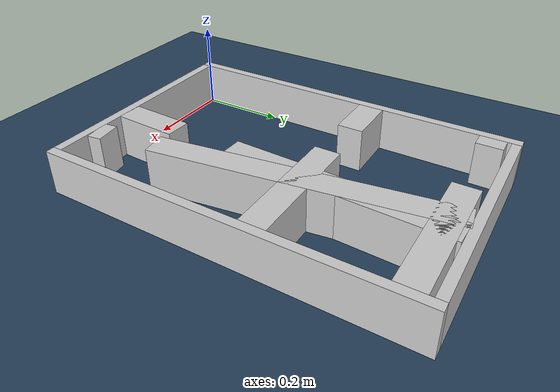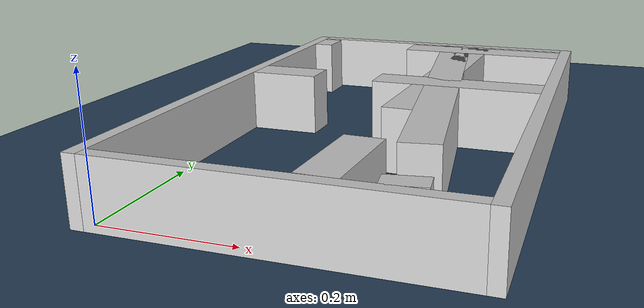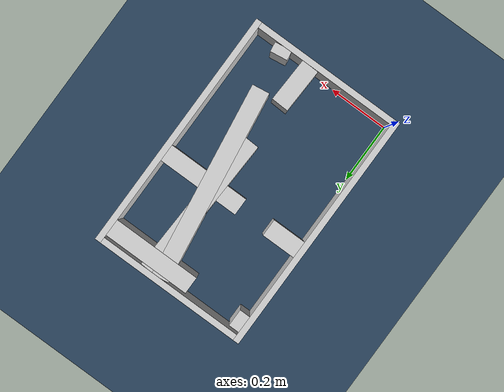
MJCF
<?xml version="1.0" ?>
<mujoco model="generated_real_template">
  <compiler angle="degree"/>
  <option timestep="0.002" integrator="implicitfast" iterations="100" cone="elliptic"/>
  <default>
    <geom density="1"/>
  </default>
  <asset>
    <texture builtin="gradient" height="3072" rgb1="0.3 0.5 0.7" rgb2="0 0 0" type="skybox" width="512"/>
    <texture builtin="checker" height="300" mark="edge" markrgb="0.8 0.8 0.8" name="groundplane" rgb1="0.2 0.3 0.4" rgb2="0.1 0.2 0.3" type="2d" width="300"/>
    <material name="groundplane" reflectance="0.2" texrepeat="5 5" texture="groundplane" texuniform="true"/>
  </asset>
  <worldbody>
    <light dir="0 0 -1" directional="true" pos="0 0 1.5"/>
    <geom name="floor" type="plane" condim="4" friction="0.5 0.005 0.001" material="groundplane" size="0 0 0.05"/>
    <body name="walls">
      <geom name="wall_boundary_left" type="box" condim="4" friction="1.0 0.005 0.0001" rgba="0.8 0.8 0.8 1" pos="-0.010000 0.387500 0.050000" euler="0 0 0.000000" size="0.010000 0.407500 0.050000"/>
      <geom name="wall_boundary_right" type="box" condim="4" friction="1.0 0.005 0.0001" rgba="0.8 0.8 0.8 1" pos="0.500000 0.387500 0.050000" euler="0 0 0.000000" size="0.010000 0.407500 0.050000"/>
      <geom name="wall_boundary_bottom" type="box" condim="4" friction="1.0 0.005 0.0001" rgba="0.8 0.8 0.8 1" pos="0.245000 -0.010000 0.050000" euler="0 0 0.000000" size="0.245000 0.010000 0.050000"/>
      <geom name="wall_boundary_top" type="box" condim="4" friction="1.0 0.005 0.0001" rgba="0.8 0.8 0.8 1" pos="0.245000 0.785000 0.050000" euler="0 0 0.000000" size="0.245000 0.010000 0.050000"/>
      <geom name="wall_inner_1_1" type="box" condim="4" friction="1.0 0.005 0.0001" rgba="0.8 0.8 0.8 1" pos="0.017751 0.737941 0.050000" euler="0 0 0.000000" size="0.017751 0.028500 0.050000"/>
      <geom name="wall_inner_1_2" type="box" condim="4" friction="1.0 0.005 0.0001" rgba="0.8 0.8 0.8 1" pos="0.343280 0.737941 0.050000" euler="0 0 0.000000" size="0.146720 0.028500 0.050000"/>
      <geom name="wall_inner_2_1" type="box" condim="4" friction="1.0 0.005 0.0001" rgba="0.8 0.8 0.8 1" pos="0.329749 0.458443 0.050000" euler="0 0 -81.803153" size="0.319824 0.028500 0.050000"/>
      <geom name="wall_inner_2_2" type="box" condim="4" friction="1.0 0.005 0.0001" rgba="0.8 0.8 0.8 1" pos="0.393512 0.015781 0.050000" euler="0 0 -81.803153" size="0.015944 0.028500 0.050000"/>
      <geom name="wall_inner_3_1" type="box" condim="4" friction="1.0 0.005 0.0001" rgba="0.8 0.8 0.8 1" pos="0.317169 0.530464 0.050000" euler="0 0 -92.212866" size="0.244718 0.028500 0.050000"/>
      <geom name="wall_inner_3_2" type="box" condim="4" friction="1.0 0.005 0.0001" rgba="0.8 0.8 0.8 1" pos="0.299514 0.073567 0.050000" euler="0 0 -92.212866" size="0.073622 0.028500 0.050000"/>
      <geom name="wall_inner_4_1" type="box" condim="4" friction="1.0 0.005 0.0001" rgba="0.8 0.8 0.8 1" pos="0.056293 0.461855 0.050000" euler="0 0 0.000000" size="0.056293 0.028500 0.050000"/>
      <geom name="wall_inner_4_2" type="box" condim="4" friction="1.0 0.005 0.0001" rgba="0.8 0.8 0.8 1" pos="0.352952 0.461855 0.050000" euler="0 0 0.000000" size="0.137048 0.028500 0.050000"/>
    </body>
  </worldbody>
</mujoco>
